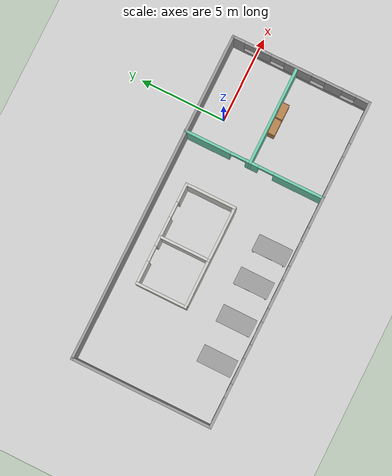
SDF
<sdf version="1.6">
 <world name="default">
  <plugin name="hello_world" filename="libhello_world.so"/>
  <light name="sun" type="directional">
   <pose>0 0 10 0 -0 0</pose>
   <diffuse>0.8 0.8 0.8 1</diffuse>
   <specular>0.2 0.2 0.2 1</specular>
   <attenuation>
    <range>1000</range>
    <constant>0.9</constant>
    <linear>0.01</linear>
    <quadratic>0.001</quadratic>
   </attenuation>
   <direction>-0.5 0.1 -0.9</direction>
  </light>
  <model name="ground_plane">
   <static>1</static>
   <link name="link">
    <collision name="collision">
     <geometry><plane><normal>0 0 1</normal><size>100 100</size></plane></geometry>
     <surface>
      <contact><collide_bitmask>65535</collide_bitmask></contact>
      <friction><ode><mu>100</mu><mu2>50</mu2></ode></friction>
     </surface>
    </collision>
    <visual name="visual">
     <cast_shadows>0</cast_shadows>
     <geometry><plane><normal>0 0 1</normal><size>100 100</size></plane></geometry>
     <material>
      <script><uri>file://media/materials/scripts/gazebo.material</uri><name>Gazebo/Grey</name></script>
     </material>
    </visual>
   </link>
  </model>
  <gravity>0 0 -9.8</gravity>
  <magnetic_field>6e-06 2.3e-05 -4.2e-05</magnetic_field>
  <atmosphere type="adiabatic"/>
  <physics name="default_physics" default="0" type="ode">
   <max_step_size>0.001</max_step_size>
   <real_time_factor>1</real_time_factor>
   <real_time_update_rate>1000</real_time_update_rate>
  </physics>
  <scene><ambient>0.4 0.4 0.4 1</ambient><background>0.7 0.7 0.7 1</background><shadows>1</shadows></scene>
  <spherical_coordinates>
   <surface_model>EARTH_WGS84</surface_model>
   <latitude_deg>0</latitude_deg>
   <longitude_deg>0</longitude_deg>
   <elevation>0</elevation>
   <heading_deg>0</heading_deg>
  </spherical_coordinates>
  <model name="Building">
   <pose>-5.59672 -2.64945 0 0 -0 0</pose>
   <link name="Wall_10">
    <pose>0 -4.06159 0 0 -0 3.14159</pose>
    <visual name="Wall_10_Visual_0">
     <pose>-8.37928 0 1.25 0 -0 0</pose>
     <geometry><box><size>2.49144 0.15 2.5</size></box></geometry>
     <material>
      <script><uri>file://media/materials/scripts/gazebo.material</uri><name>Gazebo/Grey</name></script>
      <ambient>1 1 1 1</ambient>
     </material>
     <meta><layer>0</layer></meta>
    </visual>
    <collision name="Wall_10_Collision_0">
     <geometry><box><size>2.49144 0.15 2.5</size></box></geometry>
     <pose>-8.37928 0 1.25 0 -0 0</pose>
    </collision>
    <visual name="Wall_10_Visual_1">
     <pose>1.24572 0 0.25 0 -0 0</pose>
     <geometry><box><size>16.7586 0.15 0.5</size></box></geometry>
     <material>
      <script><uri>file://media/materials/scripts/gazebo.material</uri><name>Gazebo/Grey</name></script>
      <ambient>1 1 1 1</ambient>
     </material>
     <meta><layer>0</layer></meta>
    </visual>
    <collision name="Wall_10_Collision_1">
     <geometry><box><size>16.7586 0.15 0.5</size></box></geometry>
     <pose>1.24572 0 0.25 0 -0 0</pose>
    </collision>
    <visual name="Wall_10_Visual_2">
     <pose>-4.235 0 1.5 0 -0 0</pose>
     <geometry><box><size>4.19712 0.15 2</size></box></geometry>
     <material>
      <script><uri>file://media/materials/scripts/gazebo.material</uri><name>Gazebo/Grey</name></script>
      <ambient>1 1 1 1</ambient>
     </material>
     <meta><layer>0</layer></meta>
    </visual>
    <collision name="Wall_10_Collision_2">
     <geometry><box><size>4.19712 0.15 2</size></box></geometry>
     <pose>-4.235 0 1.5 0 -0 0</pose>
    </collision>
    <visual name="Wall_10_Visual_3">
     <pose>-0.596746 0 1.5 0 -0 0</pose>
     <geometry><box><size>1.47939 0.15 2</size></box></geometry>
     <material>
      <script><uri>file://media/materials/scripts/gazebo.material</uri><name>Gazebo/Grey</name></script>
      <ambient>1 1 1 1</ambient>
     </material>
     <meta><layer>0</layer></meta>
    </visual>
    <collision name="Wall_10_Collision_3">
     <geometry><box><size>1.47939 0.15 2</size></box></geometry>
     <pose>-0.596746 0 1.5 0 -0 0</pose>
    </collision>
    <visual name="Wall_10_Visual_4">
     <pose>1.78785 0 1.5 0 -0 0</pose>
     <geometry><box><size>1.68979 0.15 2</size></box></geometry>
     <material>
      <script><uri>file://media/materials/scripts/gazebo.material</uri><name>Gazebo/Grey</name></script>
      <ambient>1 1 1 1</ambient>
     </material>
     <meta><layer>0</layer></meta>
    </visual>
    <collision name="Wall_10_Collision_4">
     <geometry><box><size>1.68979 0.15 2</size></box></geometry>
     <pose>1.78785 0 1.5 0 -0 0</pose>
    </collision>
    <visual name="Wall_10_Visual_5">
     <pose>4.08477 0 1.5 0 -0 0</pose>
     <geometry><box><size>1.30405 0.15 2</size></box></geometry>
     <material>
      <script><uri>file://media/materials/scripts/gazebo.material</uri><name>Gazebo/Grey</name></script>
      <ambient>1 1 1 1</ambient>
     </material>
     <meta><layer>0</layer></meta>
    </visual>
    <collision name="Wall_10_Collision_5">
     <geometry><box><size>1.30405 0.15 2</size></box></geometry>
     <pose>4.08477 0 1.5 0 -0 0</pose>
    </collision>
    <visual name="Wall_10_Visual_6">
     <pose>6.27649 0 1.5 0 -0 0</pose>
     <geometry><box><size>1.47939 0.15 2</size></box></geometry>
     <material>
      <script><uri>file://media/materials/scripts/gazebo.material</uri><name>Gazebo/Grey</name></script>
      <ambient>1 1 1 1</ambient>
     </material>
     <meta><layer>0</layer></meta>
    </visual>
    <collision name="Wall_10_Collision_6">
     <geometry><box><size>1.47939 0.15 2</size></box></geometry>
     <pose>6.27649 0 1.5 0 -0 0</pose>
    </collision>
    <visual name="Wall_10_Visual_7">
     <pose>8.72059 0 1.5 0 -0 0</pose>
     <geometry><box><size>1.80882 0.15 2</size></box></geometry>
     <material>
      <script><uri>file://media/materials/scripts/gazebo.material</uri><name>Gazebo/Grey</name></script>
      <ambient>1 1 1 1</ambient>
     </material>
     <meta><layer>0</layer></meta>
    </visual>
    <collision name="Wall_10_Collision_7">
     <geometry><box><size>1.80882 0.15 2</size></box></geometry>
     <pose>8.72059 0 1.5 0 -0 0</pose>
    </collision>
    <visual name="Wall_10_Visual_8">
     <pose>-6.73356 0 1.9 0 -0 0</pose>
     <geometry><box><size>0.8 0.15 1.2</size></box></geometry>
     <material>
      <script><uri>file://media/materials/scripts/gazebo.material</uri><name>Gazebo/Grey</name></script>
      <ambient>1 1 1 1</ambient>
     </material>
     <meta><layer>0</layer></meta>
    </visual>
    <collision name="Wall_10_Collision_8">
     <geometry><box><size>0.8 0.15 1.2</size></box></geometry>
     <pose>-6.73356 0 1.9 0 -0 0</pose>
    </collision>
    <visual name="Wall_10_Visual_9">
     <pose>-1.73644 0 1.9 0 -0 0</pose>
     <geometry><box><size>0.8 0.15 1.2</size></box></geometry>
     <material>
      <script><uri>file://media/materials/scripts/gazebo.material</uri><name>Gazebo/Grey</name></script>
      <ambient>1 1 1 1</ambient>
     </material>
     <meta><layer>0</layer></meta>
    </visual>
    <collision name="Wall_10_Collision_9">
     <geometry><box><size>0.8 0.15 1.2</size></box></geometry>
     <pose>-1.73644 0 1.9 0 -0 0</pose>
    </collision>
    <visual name="Wall_10_Visual_10">
     <pose>0.542949 0 1.9 0 -0 0</pose>
     <geometry><box><size>0.8 0.15 1.2</size></box></geometry>
     <material>
      <script><uri>file://media/materials/scripts/gazebo.material</uri><name>Gazebo/Grey</name></script>
      <ambient>1 1 1 1</ambient>
     </material>
     <meta><layer>0</layer></meta>
    </visual>
    <collision name="Wall_10_Collision_10">
     <geometry><box><size>0.8 0.15 1.2</size></box></geometry>
     <pose>0.542949 0 1.9 0 -0 0</pose>
    </collision>
    <visual name="Wall_10_Visual_11">
     <pose>3.03274 0 1.9 0 -0 0</pose>
     <geometry><box><size>0.8 0.15 1.2</size></box></geometry>
     <material>
      <script><uri>file://media/materials/scripts/gazebo.material</uri><name>Gazebo/Grey</name></script>
      <ambient>1 1 1 1</ambient>
     </material>
     <meta><layer>0</layer></meta>
    </visual>
    <collision name="Wall_10_Collision_11">
     <geometry><box><size>0.8 0.15 1.2</size></box></geometry>
     <pose>3.03274 0 1.9 0 -0 0</pose>
    </collision>
    <visual name="Wall_10_Visual_12">
     <pose>5.1368 0 1.9 0 -0 0</pose>
     <geometry><box><size>0.8 0.15 1.2</size></box></geometry>
     <material>
      <script><uri>file://media/materials/scripts/gazebo.material</uri><name>Gazebo/Grey</name></script>
      <ambient>1 1 1 1</ambient>
     </material>
     <meta><layer>0</layer></meta>
    </visual>
    <collision name="Wall_10_Collision_12">
     <geometry><box><size>0.8 0.15 1.2</size></box></geometry>
     <pose>5.1368 0 1.9 0 -0 0</pose>
    </collision>
    <visual name="Wall_10_Visual_13">
     <pose>7.41618 0 1.9 0 -0 0</pose>
     <geometry><box><size>0.8 0.15 1.2</size></box></geometry>
     <material>
      <script><uri>file://media/materials/scripts/gazebo.material</uri><name>Gazebo/Grey</name></script>
      <ambient>1 1 1 1</ambient>
     </material>
     <meta><layer>0</layer></meta>
    </visual>
    <collision name="Wall_10_Collision_13">
     <geometry><box><size>0.8 0.15 1.2</size></box></geometry>
     <pose>7.41618 0 1.9 0 -0 0</pose>
    </collision>
   </link>
   <link name="Wall_11">
    <collision name="Wall_11_Collision">
     <geometry><box><size>8.25 0.15 2.5</size></box></geometry>
     <pose>0 0 1.25 0 -0 0</pose>
    </collision>
    <visual name="Wall_11_Visual">
     <pose>0 0 1.25 0 -0 0</pose>
     <geometry><box><size>8.25 0.15 2.5</size></box></geometry>
     <material>
      <script><uri>file://media/materials/scripts/gazebo.material</uri><name>Gazebo/Grey</name></script>
      <ambient>1 1 1 1</ambient>
     </material>
     <meta><layer>0</layer></meta>
    </visual>
    <pose>-9.55 -0.011594 0 0 -0 1.5708</pose>
   </link>
   <link name="Wall_13">
    <pose>3.88768 0.011594 0 0 0 -1.5708</pose>
    <visual name="Wall_13_Visual_0">
     <pose>-2.75451 0 1.25 0 -0 0</pose>
     <geometry><box><size>2.74098 0.15 2.5</size></box></geometry>
     <material>
      <script><uri>file://media/materials/scripts/gazebo.material</uri><name>Gazebo/Grey</name></script>
      <ambient>0.435294 0.796078 0.67451 1</ambient>
     </material>
     <meta><layer>0</layer></meta>
    </visual>
    <collision name="Wall_13_Collision_0">
     <geometry><box><size>2.74098 0.15 2.5</size></box></geometry>
     <pose>-2.75451 0 1.25 0 -0 0</pose>
    </collision>
    <visual name="Wall_13_Visual_1">
     <pose>-0.109467 0 1.25 0 -0 0</pose>
     <geometry><box><size>0.749111 0.15 2.5</size></box></geometry>
     <material>
      <script><uri>file://media/materials/scripts/gazebo.material</uri><name>Gazebo/Grey</name></script>
      <ambient>0.435294 0.796078 0.67451 1</ambient>
     </material>
     <meta><layer>0</layer></meta>
    </visual>
    <collision name="Wall_13_Collision_1">
     <geometry><box><size>0.749111 0.15 2.5</size></box></geometry>
     <pose>-0.109467 0 1.25 0 -0 0</pose>
    </collision>
    <visual name="Wall_13_Visual_2">
     <pose>2.64504 0 1.25 0 -0 0</pose>
     <geometry><box><size>2.95991 0.15 2.5</size></box></geometry>
     <material>
      <script><uri>file://media/materials/scripts/gazebo.material</uri><name>Gazebo/Grey</name></script>
      <ambient>0.435294 0.796078 0.67451 1</ambient>
     </material>
     <meta><layer>0</layer></meta>
    </visual>
    <collision name="Wall_13_Collision_2">
     <geometry><box><size>2.95991 0.15 2.5</size></box></geometry>
     <pose>2.64504 0 1.25 0 -0 0</pose>
    </collision>
    <visual name="Wall_13_Visual_3">
     <pose>-0.934023 0 2.25 0 -0 0</pose>
     <geometry><box><size>0.9 0.15 0.5</size></box></geometry>
     <material>
      <script><uri>file://media/materials/scripts/gazebo.material</uri><name>Gazebo/Grey</name></script>
      <ambient>0.435294 0.796078 0.67451 1</ambient>
     </material>
     <meta><layer>0</layer></meta>
    </visual>
    <collision name="Wall_13_Collision_3">
     <geometry><box><size>0.9 0.15 0.5</size></box></geometry>
     <pose>-0.934023 0 2.25 0 -0 0</pose>
    </collision>
    <visual name="Wall_13_Visual_4">
     <pose>0.715088 0 2.25 0 -0 0</pose>
     <geometry><box><size>0.9 0.15 0.5</size></box></geometry>
     <material>
      <script><uri>file://media/materials/scripts/gazebo.material</uri><name>Gazebo/Grey</name></script>
      <ambient>0.435294 0.796078 0.67451 1</ambient>
     </material>
     <meta><layer>0</layer></meta>
    </visual>
    <collision name="Wall_13_Collision_4">
     <geometry><box><size>0.9 0.15 0.5</size></box></geometry>
     <pose>0.715088 0 2.25 0 -0 0</pose>
    </collision>
   </link>
   <link name="Wall_15">
    <collision name="Wall_15_Collision">
     <geometry><box><size>5.75 0.15 2.5</size></box></geometry>
     <pose>0 0 1.25 0 -0 0</pose>
    </collision>
    <visual name="Wall_15_Visual">
     <pose>0 0 1.25 0 -0 0</pose>
     <geometry><box><size>5.75 0.15 2.5</size></box></geometry>
     <material>
      <script><uri>file://media/materials/scripts/gazebo.material</uri><name>Gazebo/Grey</name></script>
      <ambient>0.435294 0.796078 0.67451 1</ambient>
     </material>
     <meta><layer>0</layer></meta>
    </visual>
    <pose>6.68768 0.235507 0 0 -0 0</pose>
   </link>
   <link name="Wall_17">
    <pose>-1.56993 2.75145 0 0 -0 0</pose>
    <visual name="Wall_17_Visual_0">
     <pose>-2.31545 0 1.25 0 -0 0</pose>
     <geometry><box><size>1.36911 0.15 2.5</size></box></geometry>
     <material>
      <script><uri>file://media/materials/scripts/gazebo.material</uri><name>Gazebo/CeilingTiled</name></script>
      <ambient>1 1 1 1</ambient>
     </material>
     <meta><layer>0</layer></meta>
    </visual>
    <collision name="Wall_17_Collision_0">
     <geometry><box><size>1.36911 0.15 2.5</size></box></geometry>
     <pose>-2.31545 0 1.25 0 -0 0</pose>
    </collision>
    <visual name="Wall_17_Visual_1">
     <pose>0.119847 0 1.25 0 -0 0</pose>
     <geometry><box><size>1.70148 0.15 2.5</size></box></geometry>
     <material>
      <script><uri>file://media/materials/scripts/gazebo.material</uri><name>Gazebo/CeilingTiled</name></script>
      <ambient>1 1 1 1</ambient>
     </material>
     <meta><layer>0</layer></meta>
    </visual>
    <collision name="Wall_17_Collision_1">
     <geometry><box><size>1.70148 0.15 2.5</size></box></geometry>
     <pose>0.119847 0 1.25 0 -0 0</pose>
    </collision>
    <visual name="Wall_17_Visual_2">
     <pose>2.43529 0 1.25 0 -0 0</pose>
     <geometry><box><size>1.12941 0.15 2.5</size></box></geometry>
     <material>
      <script><uri>file://media/materials/scripts/gazebo.material</uri><name>Gazebo/CeilingTiled</name></script>
      <ambient>1 1 1 1</ambient>
     </material>
     <meta><layer>0</layer></meta>
    </visual>
    <collision name="Wall_17_Collision_2">
     <geometry><box><size>1.12941 0.15 2.5</size></box></geometry>
     <pose>2.43529 0 1.25 0 -0 0</pose>
    </collision>
    <visual name="Wall_17_Visual_3">
     <pose>-1.1809 0 2.25 0 -0 0</pose>
     <geometry><box><size>0.9 0.15 0.5</size></box></geometry>
     <material>
      <script><uri>file://media/materials/scripts/gazebo.material</uri><name>Gazebo/CeilingTiled</name></script>
      <ambient>1 1 1 1</ambient>
     </material>
     <meta><layer>0</layer></meta>
    </visual>
    <collision name="Wall_17_Collision_3">
     <geometry><box><size>0.9 0.15 0.5</size></box></geometry>
     <pose>-1.1809 0 2.25 0 -0 0</pose>
    </collision>
    <visual name="Wall_17_Visual_4">
     <pose>1.42059 0 2.25 0 -0 0</pose>
     <geometry><box><size>0.9 0.15 0.5</size></box></geometry>
     <material>
      <script><uri>file://media/materials/scripts/gazebo.material</uri><name>Gazebo/CeilingTiled</name></script>
      <ambient>1 1 1 1</ambient>
     </material>
     <meta><layer>0</layer></meta>
    </visual>
    <collision name="Wall_17_Collision_4">
     <geometry><box><size>0.9 0.15 0.5</size></box></geometry>
     <pose>1.42059 0 2.25 0 -0 0</pose>
    </collision>
   </link>
   <link name="Wall_18">
    <collision name="Wall_18_Collision">
     <geometry><box><size>3 0.15 2.5</size></box></geometry>
     <pose>0 0 1.25 0 -0 0</pose>
    </collision>
    <visual name="Wall_18_Visual">
     <pose>0 0 1.25 0 -0 0</pose>
     <geometry><box><size>3 0.15 2.5</size></box></geometry>
     <material>
      <script><uri>file://media/materials/scripts/gazebo.material</uri><name>Gazebo/CeilingTiled</name></script>
      <ambient>1 1 1 1</ambient>
     </material>
     <meta><layer>0</layer></meta>
    </visual>
    <pose>1.35507 1.32645 0 0 0 -1.5708</pose>
   </link>
   <link name="Wall_19">
    <collision name="Wall_19_Collision">
     <geometry><box><size>6 0.15 2.5</size></box></geometry>
     <pose>0 0 1.25 0 -0 0</pose>
    </collision>
    <visual name="Wall_19_Visual">
     <pose>0 0 1.25 0 -0 0</pose>
     <geometry><box><size>6 0.15 2.5</size></box></geometry>
     <material>
      <script><uri>file://media/materials/scripts/gazebo.material</uri><name>Gazebo/CeilingTiled</name></script>
      <ambient>1 1 1 1</ambient>
     </material>
     <meta><layer>0</layer></meta>
    </visual>
    <pose>-1.56993 -0.098551 0 0 -0 3.14159</pose>
   </link>
   <link name="Wall_20">
    <collision name="Wall_20_Collision">
     <geometry><box><size>3 0.15 2.5</size></box></geometry>
     <pose>0 0 1.25 0 -0 0</pose>
    </collision>
    <visual name="Wall_20_Visual">
     <pose>0 0 1.25 0 -0 0</pose>
     <geometry><box><size>3 0.15 2.5</size></box></geometry>
     <material>
      <script><uri>file://media/materials/scripts/gazebo.material</uri><name>Gazebo/CeilingTiled</name></script>
      <ambient>1 1 1 1</ambient>
     </material>
     <meta><layer>0</layer></meta>
    </visual>
    <pose>-4.49493 1.32645 0 0 -0 1.5708</pose>
   </link>
   <link name="Wall_23">
    <collision name="Wall_23_Collision">
     <geometry><box><size>3 0.15 2.5</size></box></geometry>
     <pose>0 0 1.25 0 -0 0</pose>
    </collision>
    <visual name="Wall_23_Visual">
     <pose>0 0 1.25 0 -0 0</pose>
     <geometry><box><size>3 0.15 2.5</size></box></geometry>
     <material>
      <script><uri>file://media/materials/scripts/gazebo.material</uri><name>Gazebo/CeilingTiled</name></script>
      <ambient>1 1 1 1</ambient>
     </material>
     <meta><layer>0</layer></meta>
    </visual>
    <pose>-1.75334 1.33013 0 0 0 -1.5708</pose>
   </link>
   <link name="Wall_8">
    <collision name="Wall_8_Collision">
     <geometry><box><size>19.25 0.15 2.5</size></box></geometry>
     <pose>0 0 1.25 0 -0 0</pose>
    </collision>
    <visual name="Wall_8_Visual">
     <pose>0 0 1.25 0 -0 0</pose>
     <geometry><box><size>19.25 0.15 2.5</size></box></geometry>
     <material>
      <script><uri>file://media/materials/scripts/gazebo.material</uri><name>Gazebo/Grey</name></script>
      <ambient>1 1 1 1</ambient>
     </material>
     <meta><layer>0</layer></meta>
    </visual>
    <pose>0 4.03841 0 0 -0 0</pose>
   </link>
   <link name="Wall_9">
    <pose>9.55 -0.011594 0 0 0 -1.5708</pose>
    <visual name="Wall_9_Visual_0">
     <pose>-3.73293 0 1.25 0 -0 0</pose>
     <geometry><box><size>0.784146 0.15 2.5</size></box></geometry>
     <material>
      <script><uri>file://media/materials/scripts/gazebo.material</uri><name>Gazebo/Grey</name></script>
      <ambient>1 1 1 1</ambient>
     </material>
     <meta><layer>0</layer></meta>
    </visual>
    <collision name="Wall_9_Collision_0">
     <geometry><box><size>0.784146 0.15 2.5</size></box></geometry>
     <pose>-3.73293 0 1.25 0 -0 0</pose>
    </collision>
    <visual name="Wall_9_Visual_1">
     <pose>0.392073 0 0.25 0 -0 0</pose>
     <geometry><box><size>7.46585 0.15 0.5</size></box></geometry>
     <material>
      <script><uri>file://media/materials/scripts/gazebo.material</uri><name>Gazebo/Grey</name></script>
      <ambient>1 1 1 1</ambient>
     </material>
     <meta><layer>0</layer></meta>
    </visual>
    <collision name="Wall_9_Collision_1">
     <geometry><box><size>7.46585 0.15 0.5</size></box></geometry>
     <pose>0.392073 0 0.25 0 -0 0</pose>
    </collision>
    <visual name="Wall_9_Visual_2">
     <pose>-2.15184 0 1.5 0 -0 0</pose>
     <geometry><box><size>0.778039 0.15 2</size></box></geometry>
     <material>
      <script><uri>file://media/materials/scripts/gazebo.material</uri><name>Gazebo/Grey</name></script>
      <ambient>1 1 1 1</ambient>
     </material>
     <meta><layer>0</layer></meta>
    </visual>
    <collision name="Wall_9_Collision_2">
     <geometry><box><size>0.778039 0.15 2</size></box></geometry>
     <pose>-2.15184 0 1.5 0 -0 0</pose>
    </collision>
    <visual name="Wall_9_Visual_3">
     <pose>-0.161753 0 1.5 0 -0 0</pose>
     <geometry><box><size>1.60213 0.15 2</size></box></geometry>
     <material>
      <script><uri>file://media/materials/scripts/gazebo.material</uri><name>Gazebo/Grey</name></script>
      <ambient>1 1 1 1</ambient>
     </material>
     <meta><layer>0</layer></meta>
    </visual>
    <collision name="Wall_9_Collision_3">
     <geometry><box><size>1.60213 0.15 2</size></box></geometry>
     <pose>-0.161753 0 1.5 0 -0 0</pose>
    </collision>
    <visual name="Wall_9_Visual_4">
     <pose>1.9423 0 1.5 0 -0 0</pose>
     <geometry><box><size>1.00598 0.15 2</size></box></geometry>
     <material>
      <script><uri>file://media/materials/scripts/gazebo.material</uri><name>Gazebo/Grey</name></script>
      <ambient>1 1 1 1</ambient>
     </material>
     <meta><layer>0</layer></meta>
    </visual>
    <collision name="Wall_9_Collision_4">
     <geometry><box><size>1.00598 0.15 2</size></box></geometry>
     <pose>1.9423 0 1.5 0 -0 0</pose>
    </collision>
    <visual name="Wall_9_Visual_5">
     <pose>3.68514 0 1.5 0 -0 0</pose>
     <geometry><box><size>0.879712 0.15 2</size></box></geometry>
     <material>
      <script><uri>file://media/materials/scripts/gazebo.material</uri><name>Gazebo/Grey</name></script>
      <ambient>1 1 1 1</ambient>
     </material>
     <meta><layer>0</layer></meta>
    </visual>
    <collision name="Wall_9_Collision_5">
     <geometry><box><size>0.879712 0.15 2</size></box></geometry>
     <pose>3.68514 0 1.5 0 -0 0</pose>
    </collision>
    <visual name="Wall_9_Visual_6">
     <pose>-2.94085 0 1.9 0 -0 0</pose>
     <geometry><box><size>0.8 0.15 1.2</size></box></geometry>
     <material>
      <script><uri>file://media/materials/scripts/gazebo.material</uri><name>Gazebo/Grey</name></script>
      <ambient>1 1 1 1</ambient>
     </material>
     <meta><layer>0</layer></meta>
    </visual>
    <collision name="Wall_9_Collision_6">
     <geometry><box><size>0.8 0.15 1.2</size></box></geometry>
     <pose>-2.94085 0 1.9 0 -0 0</pose>
    </collision>
    <visual name="Wall_9_Visual_7">
     <pose>-1.36282 0 1.9 0 -0 0</pose>
     <geometry><box><size>0.8 0.15 1.2</size></box></geometry>
     <material>
      <script><uri>file://media/materials/scripts/gazebo.material</uri><name>Gazebo/Grey</name></script>
      <ambient>1 1 1 1</ambient>
     </material>
     <meta><layer>0</layer></meta>
    </visual>
    <collision name="Wall_9_Collision_7">
     <geometry><box><size>0.8 0.15 1.2</size></box></geometry>
     <pose>-1.36282 0 1.9 0 -0 0</pose>
    </collision>
    <visual name="Wall_9_Visual_8">
     <pose>1.03931 0 1.9 0 -0 0</pose>
     <geometry><box><size>0.8 0.15 1.2</size></box></geometry>
     <material>
      <script><uri>file://media/materials/scripts/gazebo.material</uri><name>Gazebo/Grey</name></script>
      <ambient>1 1 1 1</ambient>
     </material>
     <meta><layer>0</layer></meta>
    </visual>
    <collision name="Wall_9_Collision_8">
     <geometry><box><size>0.8 0.15 1.2</size></box></geometry>
     <pose>1.03931 0 1.9 0 -0 0</pose>
    </collision>
    <visual name="Wall_9_Visual_9">
     <pose>2.84529 0 1.9 0 -0 0</pose>
     <geometry><box><size>0.8 0.15 1.2</size></box></geometry>
     <material>
      <script><uri>file://media/materials/scripts/gazebo.material</uri><name>Gazebo/Grey</name></script>
      <ambient>1 1 1 1</ambient>
     </material>
     <meta><layer>0</layer></meta>
    </visual>
    <collision name="Wall_9_Collision_9">
     <geometry><box><size>0.8 0.15 1.2</size></box></geometry>
     <pose>2.84529 0 1.9 0 -0 0</pose>
    </collision>
   </link>
   <static>1</static>
  </model>
  <model name="Desk">
   <link name="link_0">
    <pose>-5.87459 -9.93361 0.359623 0 -0 0</pose>
    <inertial>
     <mass>1</mass>
     <inertia>
      <ixx>0.166667</ixx>
      <ixy>0</ixy>
      <ixz>0</ixz>
      <iyy>0.166667</iyy>
      <iyz>0</iyz>
      <izz>0.166667</izz>
     </inertia>
    </inertial>
    <visual name="ModelPreview_0::link_0::visual_3">
     <pose>0 0 -0.1 0 -0 0</pose>
     <geometry><box><size>0.1 0.1 0.75</size></box></geometry>
     <material>
      <lighting>1</lighting>
      <script><uri>file://media/materials/scripts/gazebo.material</uri><name>Gazebo/Grey</name></script>
      <shader type="pixel"><normal_map>__default__</normal_map></shader>
      <ambient>0.3 0.3 0.3 1</ambient>
      <diffuse>0.7 0.7 0.7 1</diffuse>
      <specular>0.01 0.01 0.01 1</specular>
      <emissive>0 0 0 1</emissive>
     </material>
    </visual>
    <visual name="visual">
     <pose>0 0 -0.5 0 -0 0</pose>
     <geometry><box><size>0.8 0.1 0.05</size></box></geometry>
     <material>
      <lighting>1</lighting>
      <script><uri>file://media/materials/scripts/gazebo.material</uri><name>Gazebo/Grey</name></script>
      <shader type="pixel"><normal_map>__default__</normal_map></shader>
      <ambient>0.3 0.3 0.3 1</ambient>
      <diffuse>0.7 0.7 0.7 1</diffuse>
      <specular>0.01 0.01 0.01 1</specular>
      <emissive>0 0 0 1</emissive>
     </material>
    </visual>
    <visual name="ModelPreview_0::link_0::visual_2">
     <pose>0 1.8 -0.1 0 -0 0</pose>
     <geometry><box><size>0.1 0.1 0.75</size></box></geometry>
     <material>
      <lighting>1</lighting>
      <script><uri>file://media/materials/scripts/gazebo.material</uri><name>Gazebo/Grey</name></script>
      <shader type="pixel"><normal_map>__default__</normal_map></shader>
      <ambient>0.3 0.3 0.3 1</ambient>
      <diffuse>0.7 0.7 0.7 1</diffuse>
      <specular>0.01 0.01 0.01 1</specular>
      <emissive>0 0 0 1</emissive>
     </material>
    </visual>
    <visual name="ModelPreview_0::link_0::visual_1">
     <pose>0 1.8 -0.5 0 -0 0</pose>
     <geometry><box><size>0.8 0.1 0.05</size></box></geometry>
     <material>
      <lighting>1</lighting>
      <script><uri>file://media/materials/scripts/gazebo.material</uri><name>Gazebo/Grey</name></script>
      <shader type="pixel"><normal_map>__default__</normal_map></shader>
      <ambient>0.3 0.3 0.3 1</ambient>
      <diffuse>0.7 0.7 0.7 1</diffuse>
      <specular>0.01 0.01 0.01 1</specular>
      <emissive>0 0 0 1</emissive>
     </material>
    </visual>
    <collision name="collision">
     <pose>0 0.9 -0.1 0 -0 0</pose>
     <geometry><box><size>0.8 2 0.8</size></box></geometry>
     <surface>
      <friction>
       <ode><mu>1</mu><mu2>1</mu2><fdir1>0 0 0</fdir1><slip1>0</slip1><slip2>0</slip2></ode>
       <torsional>
        <coefficient>1</coefficient>
        <patch_radius>0</patch_radius>
        <surface_radius>0</surface_radius>
        <use_patch_radius>1</use_patch_radius>
        <ode><slip>0</slip></ode>
       </torsional>
      </friction>
      <bounce><restitution_coefficient>0</restitution_coefficient><threshold>1e+06</threshold></bounce>
      <contact>
       <collide_without_contact>0</collide_without_contact>
       <collide_without_contact_bitmask>1</collide_without_contact_bitmask>
       <collide_bitmask>1</collide_bitmask>
       <ode>
        <soft_cfm>0</soft_cfm>
        <soft_erp>0.2</soft_erp>
        <kp>1e+13</kp>
        <kd>1</kd>
        <max_vel>0.01</max_vel>
        <min_depth>0</min_depth>
       </ode>
       <bullet>
        <split_impulse>1</split_impulse>
        <split_impulse_penetration_threshold>-0.01</split_impulse_penetration_threshold>
        <soft_cfm>0</soft_cfm>
        <soft_erp>0.2</soft_erp>
        <kp>1e+13</kp>
        <kd>1</kd>
       </bullet>
      </contact>
     </surface>
    </collision>
   </link>
   <link name="link_1">
    <pose>-5.78051 -9.03331 0.640377 0 -0 0</pose>
    <inertial>
     <mass>1</mass>
     <inertia>
      <ixx>0.166667</ixx>
      <ixy>0</ixy>
      <ixz>0</ixz>
      <iyy>0.166667</iyy>
      <iyz>0</iyz>
      <izz>0.166667</izz>
     </inertia>
    </inertial>
    <visual name="visual">
     <geometry><box><size>1 2 0.02</size></box></geometry>
     <material>
      <lighting>1</lighting>
      <script><uri>file://media/materials/scripts/gazebo.material</uri><name>Gazebo/Grey</name></script>
      <shader type="pixel"><normal_map>__default__</normal_map></shader>
      <ambient>0.3 0.3 0.3 1</ambient>
      <diffuse>0.7 0.7 0.7 1</diffuse>
      <specular>0.01 0.01 0.01 1</specular>
      <emissive>0 0 0 1</emissive>
     </material>
    </visual>
    <collision name="collision">
     <geometry><box><size>1 2 0.02</size></box></geometry>
     <surface>
      <friction>
       <ode><mu>1</mu><mu2>1</mu2><fdir1>0 0 0</fdir1><slip1>0</slip1><slip2>0</slip2></ode>
       <torsional>
        <coefficient>1</coefficient>
        <patch_radius>0</patch_radius>
        <surface_radius>0</surface_radius>
        <use_patch_radius>1</use_patch_radius>
        <ode><slip>0</slip></ode>
       </torsional>
      </friction>
      <bounce><restitution_coefficient>0</restitution_coefficient><threshold>1e+06</threshold></bounce>
      <contact>
       <collide_without_contact>0</collide_without_contact>
       <collide_without_contact_bitmask>1</collide_without_contact_bitmask>
       <collide_bitmask>1</collide_bitmask>
       <ode>
        <soft_cfm>0</soft_cfm>
        <soft_erp>0.2</soft_erp>
        <kp>1e+13</kp>
        <kd>1</kd>
        <max_vel>0.01</max_vel>
        <min_depth>0</min_depth>
       </ode>
       <bullet>
        <split_impulse>1</split_impulse>
        <split_impulse_penetration_threshold>-0.01</split_impulse_penetration_threshold>
        <soft_cfm>0</soft_cfm>
        <soft_erp>0.2</soft_erp>
        <kp>1e+13</kp>
        <kd>1</kd>
       </bullet>
      </contact>
     </surface>
    </collision>
   </link>
   <joint name="link_0_JOINT_1" type="revolute">
    <parent>link_0</parent>
    <child>link_1</child>
    <axis>
     <xyz>1 0 0</xyz>
     <use_parent_model_frame>0</use_parent_model_frame>
     <limit>
      <lower>-1.79769e+308</lower>
      <upper>1.79769e+308</upper>
      <effort>-1</effort>
      <velocity>-1</velocity>
     </limit>
     <dynamics>
      <spring_reference>0</spring_reference>
      <spring_stiffness>0</spring_stiffness>
      <damping>0</damping>
     </dynamics>
    </axis>
    <physics>
     <ode><limit><cfm>0</cfm><erp>0.2</erp></limit><suspension><cfm>0</cfm><erp>0.2</erp></suspension></ode>
    </physics>
   </joint>
   <static>0</static>
   <pose>0.542016 3.50617 0.140348 -3e-06 -0 -0.001994</pose>
  </model>
  <model name="Desk_clone_1">
   <link name="link_0">
    <pose>-5.87459 -9.93361 0.359623 0 -0 0</pose>
    <inertial>
     <mass>1</mass>
     <inertia>
      <ixx>0.166667</ixx>
      <ixy>0</ixy>
      <ixz>0</ixz>
      <iyy>0.166667</iyy>
      <iyz>0</iyz>
      <izz>0.166667</izz>
     </inertia>
    </inertial>
    <visual name="ModelPreview_0::link_0::visual_3">
     <pose>0 0 -0.1 0 -0 0</pose>
     <geometry><box><size>0.1 0.1 0.75</size></box></geometry>
     <material>
      <lighting>1</lighting>
      <script><uri>file://media/materials/scripts/gazebo.material</uri><name>Gazebo/Grey</name></script>
      <shader type="pixel"><normal_map>__default__</normal_map></shader>
      <ambient>0.3 0.3 0.3 1</ambient>
      <diffuse>0.7 0.7 0.7 1</diffuse>
      <specular>0.01 0.01 0.01 1</specular>
      <emissive>0 0 0 1</emissive>
     </material>
    </visual>
    <visual name="visual">
     <pose>0 0 -0.5 0 -0 0</pose>
     <geometry><box><size>0.8 0.1 0.05</size></box></geometry>
     <material>
      <lighting>1</lighting>
      <script><uri>file://media/materials/scripts/gazebo.material</uri><name>Gazebo/Grey</name></script>
      <shader type="pixel"><normal_map>__default__</normal_map></shader>
      <ambient>0.3 0.3 0.3 1</ambient>
      <diffuse>0.7 0.7 0.7 1</diffuse>
      <specular>0.01 0.01 0.01 1</specular>
      <emissive>0 0 0 1</emissive>
     </material>
    </visual>
    <visual name="ModelPreview_0::link_0::visual_2">
     <pose>0 1.8 -0.1 0 -0 0</pose>
     <geometry><box><size>0.1 0.1 0.75</size></box></geometry>
     <material>
      <lighting>1</lighting>
      <script><uri>file://media/materials/scripts/gazebo.material</uri><name>Gazebo/Grey</name></script>
      <shader type="pixel"><normal_map>__default__</normal_map></shader>
      <ambient>0.3 0.3 0.3 1</ambient>
      <diffuse>0.7 0.7 0.7 1</diffuse>
      <specular>0.01 0.01 0.01 1</specular>
      <emissive>0 0 0 1</emissive>
     </material>
    </visual>
    <visual name="ModelPreview_0::link_0::visual_1">
     <pose>0 1.8 -0.5 0 -0 0</pose>
     <geometry><box><size>0.8 0.1 0.05</size></box></geometry>
     <material>
      <lighting>1</lighting>
      <script><uri>file://media/materials/scripts/gazebo.material</uri><name>Gazebo/Grey</name></script>
      <shader type="pixel"><normal_map>__default__</normal_map></shader>
      <ambient>0.3 0.3 0.3 1</ambient>
      <diffuse>0.7 0.7 0.7 1</diffuse>
      <specular>0.01 0.01 0.01 1</specular>
      <emissive>0 0 0 1</emissive>
     </material>
    </visual>
    <collision name="collision">
     <pose>0 0.9 -0.1 0 -0 0</pose>
     <geometry><box><size>0.8 2 0.8</size></box></geometry>
     <surface>
      <friction>
       <ode><mu>1</mu><mu2>1</mu2><fdir1>0 0 0</fdir1><slip1>0</slip1><slip2>0</slip2></ode>
       <torsional>
        <coefficient>1</coefficient>
        <patch_radius>0</patch_radius>
        <surface_radius>0</surface_radius>
        <use_patch_radius>1</use_patch_radius>
        <ode><slip>0</slip></ode>
       </torsional>
      </friction>
      <bounce><restitution_coefficient>0</restitution_coefficient><threshold>1e+06</threshold></bounce>
      <contact>
       <collide_without_contact>0</collide_without_contact>
       <collide_without_contact_bitmask>1</collide_without_contact_bitmask>
       <collide_bitmask>1</collide_bitmask>
       <ode>
        <soft_cfm>0</soft_cfm>
        <soft_erp>0.2</soft_erp>
        <kp>1e+13</kp>
        <kd>1</kd>
        <max_vel>0.01</max_vel>
        <min_depth>0</min_depth>
       </ode>
       <bullet>
        <split_impulse>1</split_impulse>
        <split_impulse_penetration_threshold>-0.01</split_impulse_penetration_threshold>
        <soft_cfm>0</soft_cfm>
        <soft_erp>0.2</soft_erp>
        <kp>1e+13</kp>
        <kd>1</kd>
       </bullet>
      </contact>
     </surface>
    </collision>
   </link>
   <link name="link_1">
    <pose>-5.78051 -9.03331 0.640377 0 -0 0</pose>
    <inertial>
     <mass>1</mass>
     <inertia>
      <ixx>0.166667</ixx>
      <ixy>0</ixy>
      <ixz>0</ixz>
      <iyy>0.166667</iyy>
      <iyz>0</iyz>
      <izz>0.166667</izz>
     </inertia>
    </inertial>
    <visual name="visual">
     <geometry><box><size>1 2 0.02</size></box></geometry>
     <material>
      <lighting>1</lighting>
      <script><uri>file://media/materials/scripts/gazebo.material</uri><name>Gazebo/Grey</name></script>
      <shader type="pixel"><normal_map>__default__</normal_map></shader>
      <ambient>0.3 0.3 0.3 1</ambient>
      <diffuse>0.7 0.7 0.7 1</diffuse>
      <specular>0.01 0.01 0.01 1</specular>
      <emissive>0 0 0 1</emissive>
     </material>
    </visual>
    <collision name="collision">
     <geometry><box><size>1 2 0.02</size></box></geometry>
     <surface>
      <friction>
       <ode><mu>1</mu><mu2>1</mu2><fdir1>0 0 0</fdir1><slip1>0</slip1><slip2>0</slip2></ode>
       <torsional>
        <coefficient>1</coefficient>
        <patch_radius>0</patch_radius>
        <surface_radius>0</surface_radius>
        <use_patch_radius>1</use_patch_radius>
        <ode><slip>0</slip></ode>
       </torsional>
      </friction>
      <bounce><restitution_coefficient>0</restitution_coefficient><threshold>1e+06</threshold></bounce>
      <contact>
       <collide_without_contact>0</collide_without_contact>
       <collide_without_contact_bitmask>1</collide_without_contact_bitmask>
       <collide_bitmask>1</collide_bitmask>
       <ode>
        <soft_cfm>0</soft_cfm>
        <soft_erp>0.2</soft_erp>
        <kp>1e+13</kp>
        <kd>1</kd>
        <max_vel>0.01</max_vel>
        <min_depth>0</min_depth>
       </ode>
       <bullet>
        <split_impulse>1</split_impulse>
        <split_impulse_penetration_threshold>-0.01</split_impulse_penetration_threshold>
        <soft_cfm>0</soft_cfm>
        <soft_erp>0.2</soft_erp>
        <kp>1e+13</kp>
        <kd>1</kd>
       </bullet>
      </contact>
     </surface>
    </collision>
   </link>
   <joint name="link_0_JOINT_1" type="revolute">
    <parent>link_0</parent>
    <child>link_1</child>
    <axis>
     <xyz>1 0 0</xyz>
     <use_parent_model_frame>0</use_parent_model_frame>
     <limit>
      <lower>-1.79769e+308</lower>
      <upper>1.79769e+308</upper>
      <effort>-1</effort>
      <velocity>-1</velocity>
     </limit>
     <dynamics>
      <spring_reference>0</spring_reference>
      <spring_stiffness>0</spring_stiffness>
      <damping>0</damping>
     </dynamics>
    </axis>
    <physics>
     <ode><limit><cfm>0</cfm><erp>0.2</erp></limit><suspension><cfm>0</cfm><erp>0.2</erp></suspension></ode>
    </physics>
   </joint>
   <static>0</static>
   <pose>-6.07299 3.52848 0.140368 2e-06 4e-06 -0.001998</pose>
  </model>
  <model name="Desk_clone_1_clone">
   <link name="link_0">
    <pose>-5.87459 -9.93361 0.359623 0 -0 0</pose>
    <inertial>
     <mass>1</mass>
     <inertia>
      <ixx>0.166667</ixx>
      <ixy>0</ixy>
      <ixz>0</ixz>
      <iyy>0.166667</iyy>
      <iyz>0</iyz>
      <izz>0.166667</izz>
     </inertia>
    </inertial>
    <visual name="ModelPreview_0::link_0::visual_3">
     <pose>0 0 -0.1 0 -0 0</pose>
     <geometry><box><size>0.1 0.1 0.75</size></box></geometry>
     <material>
      <lighting>1</lighting>
      <script><uri>file://media/materials/scripts/gazebo.material</uri><name>Gazebo/Grey</name></script>
      <shader type="pixel"><normal_map>__default__</normal_map></shader>
      <ambient>0.3 0.3 0.3 1</ambient>
      <diffuse>0.7 0.7 0.7 1</diffuse>
      <specular>0.01 0.01 0.01 1</specular>
      <emissive>0 0 0 1</emissive>
     </material>
    </visual>
    <visual name="visual">
     <pose>0 0 -0.5 0 -0 0</pose>
     <geometry><box><size>0.8 0.1 0.05</size></box></geometry>
     <material>
      <lighting>1</lighting>
      <script><uri>file://media/materials/scripts/gazebo.material</uri><name>Gazebo/Grey</name></script>
      <shader type="pixel"><normal_map>__default__</normal_map></shader>
      <ambient>0.3 0.3 0.3 1</ambient>
      <diffuse>0.7 0.7 0.7 1</diffuse>
      <specular>0.01 0.01 0.01 1</specular>
      <emissive>0 0 0 1</emissive>
     </material>
    </visual>
    <visual name="ModelPreview_0::link_0::visual_2">
     <pose>0 1.8 -0.1 0 -0 0</pose>
     <geometry><box><size>0.1 0.1 0.75</size></box></geometry>
     <material>
      <lighting>1</lighting>
      <script><uri>file://media/materials/scripts/gazebo.material</uri><name>Gazebo/Grey</name></script>
      <shader type="pixel"><normal_map>__default__</normal_map></shader>
      <ambient>0.3 0.3 0.3 1</ambient>
      <diffuse>0.7 0.7 0.7 1</diffuse>
      <specular>0.01 0.01 0.01 1</specular>
      <emissive>0 0 0 1</emissive>
     </material>
    </visual>
    <visual name="ModelPreview_0::link_0::visual_1">
     <pose>0 1.8 -0.5 0 -0 0</pose>
     <geometry><box><size>0.8 0.1 0.05</size></box></geometry>
     <material>
      <lighting>1</lighting>
      <script><uri>file://media/materials/scripts/gazebo.material</uri><name>Gazebo/Grey</name></script>
      <shader type="pixel"><normal_map>__default__</normal_map></shader>
      <ambient>0.3 0.3 0.3 1</ambient>
      <diffuse>0.7 0.7 0.7 1</diffuse>
      <specular>0.01 0.01 0.01 1</specular>
      <emissive>0 0 0 1</emissive>
     </material>
    </visual>
    <collision name="collision">
     <pose>0 0.9 -0.1 0 -0 0</pose>
     <geometry><box><size>0.8 2 0.8</size></box></geometry>
     <surface>
      <friction>
       <ode><mu>1</mu><mu2>1</mu2><fdir1>0 0 0</fdir1><slip1>0</slip1><slip2>0</slip2></ode>
       <torsional>
        <coefficient>1</coefficient>
        <patch_radius>0</patch_radius>
        <surface_radius>0</surface_radius>
        <use_patch_radius>1</use_patch_radius>
        <ode><slip>0</slip></ode>
       </torsional>
      </friction>
      <bounce><restitution_coefficient>0</restitution_coefficient><threshold>1e+06</threshold></bounce>
      <contact>
       <collide_without_contact>0</collide_without_contact>
       <collide_without_contact_bitmask>1</collide_without_contact_bitmask>
       <collide_bitmask>1</collide_bitmask>
       <ode>
        <soft_cfm>0</soft_cfm>
        <soft_erp>0.2</soft_erp>
        <kp>1e+13</kp>
        <kd>1</kd>
        <max_vel>0.01</max_vel>
        <min_depth>0</min_depth>
       </ode>
       <bullet>
        <split_impulse>1</split_impulse>
        <split_impulse_penetration_threshold>-0.01</split_impulse_penetration_threshold>
        <soft_cfm>0</soft_cfm>
        <soft_erp>0.2</soft_erp>
        <kp>1e+13</kp>
        <kd>1</kd>
       </bullet>
      </contact>
     </surface>
    </collision>
   </link>
   <link name="link_1">
    <pose>-5.78051 -9.03331 0.640377 0 -0 0</pose>
    <inertial>
     <mass>1</mass>
     <inertia>
      <ixx>0.166667</ixx>
      <ixy>0</ixy>
      <ixz>0</ixz>
      <iyy>0.166667</iyy>
      <iyz>0</iyz>
      <izz>0.166667</izz>
     </inertia>
    </inertial>
    <visual name="visual">
     <geometry><box><size>1 2 0.02</size></box></geometry>
     <material>
      <lighting>1</lighting>
      <script><uri>file://media/materials/scripts/gazebo.material</uri><name>Gazebo/Grey</name></script>
      <shader type="pixel"><normal_map>__default__</normal_map></shader>
      <ambient>0.3 0.3 0.3 1</ambient>
      <diffuse>0.7 0.7 0.7 1</diffuse>
      <specular>0.01 0.01 0.01 1</specular>
      <emissive>0 0 0 1</emissive>
     </material>
    </visual>
    <collision name="collision">
     <geometry><box><size>1 2 0.02</size></box></geometry>
     <surface>
      <friction>
       <ode><mu>1</mu><mu2>1</mu2><fdir1>0 0 0</fdir1><slip1>0</slip1><slip2>0</slip2></ode>
       <torsional>
        <coefficient>1</coefficient>
        <patch_radius>0</patch_radius>
        <surface_radius>0</surface_radius>
        <use_patch_radius>1</use_patch_radius>
        <ode><slip>0</slip></ode>
       </torsional>
      </friction>
      <bounce><restitution_coefficient>0</restitution_coefficient><threshold>1e+06</threshold></bounce>
      <contact>
       <collide_without_contact>0</collide_without_contact>
       <collide_without_contact_bitmask>1</collide_without_contact_bitmask>
       <collide_bitmask>1</collide_bitmask>
       <ode>
        <soft_cfm>0</soft_cfm>
        <soft_erp>0.2</soft_erp>
        <kp>1e+13</kp>
        <kd>1</kd>
        <max_vel>0.01</max_vel>
        <min_depth>0</min_depth>
       </ode>
       <bullet>
        <split_impulse>1</split_impulse>
        <split_impulse_penetration_threshold>-0.01</split_impulse_penetration_threshold>
        <soft_cfm>0</soft_cfm>
        <soft_erp>0.2</soft_erp>
        <kp>1e+13</kp>
        <kd>1</kd>
       </bullet>
      </contact>
     </surface>
    </collision>
   </link>
   <joint name="link_0_JOINT_1" type="revolute">
    <parent>link_0</parent>
    <child>link_1</child>
    <axis>
     <xyz>1 0 0</xyz>
     <use_parent_model_frame>0</use_parent_model_frame>
     <limit>
      <lower>-1.79769e+308</lower>
      <upper>1.79769e+308</upper>
      <effort>-1</effort>
      <velocity>-1</velocity>
     </limit>
     <dynamics>
      <spring_reference>0</spring_reference>
      <spring_stiffness>0</spring_stiffness>
      <damping>0</damping>
     </dynamics>
    </axis>
    <physics>
     <ode><limit><cfm>0</cfm><erp>0.2</erp></limit><suspension><cfm>0</cfm><erp>0.2</erp></suspension></ode>
    </physics>
   </joint>
   <static>0</static>
   <pose>-3.69761 3.55798 0.140316 -6e-06 -0 -0.001995</pose>
  </model>
  <model name="Desk_clone_1_clone_clone">
   <link name="link_0">
    <pose>-5.87459 -9.93361 0.359623 0 -0 0</pose>
    <inertial>
     <mass>1</mass>
     <inertia>
      <ixx>0.166667</ixx>
      <ixy>0</ixy>
      <ixz>0</ixz>
      <iyy>0.166667</iyy>
      <iyz>0</iyz>
      <izz>0.166667</izz>
     </inertia>
    </inertial>
    <visual name="ModelPreview_0::link_0::visual_3">
     <pose>0 0 -0.1 0 -0 0</pose>
     <geometry><box><size>0.1 0.1 0.75</size></box></geometry>
     <material>
      <lighting>1</lighting>
      <script><uri>file://media/materials/scripts/gazebo.material</uri><name>Gazebo/Grey</name></script>
      <shader type="pixel"><normal_map>__default__</normal_map></shader>
      <ambient>0.3 0.3 0.3 1</ambient>
      <diffuse>0.7 0.7 0.7 1</diffuse>
      <specular>0.01 0.01 0.01 1</specular>
      <emissive>0 0 0 1</emissive>
     </material>
    </visual>
    <visual name="visual">
     <pose>0 0 -0.5 0 -0 0</pose>
     <geometry><box><size>0.8 0.1 0.05</size></box></geometry>
     <material>
      <lighting>1</lighting>
      <script><uri>file://media/materials/scripts/gazebo.material</uri><name>Gazebo/Grey</name></script>
      <shader type="pixel"><normal_map>__default__</normal_map></shader>
      <ambient>0.3 0.3 0.3 1</ambient>
      <diffuse>0.7 0.7 0.7 1</diffuse>
      <specular>0.01 0.01 0.01 1</specular>
      <emissive>0 0 0 1</emissive>
     </material>
    </visual>
    <visual name="ModelPreview_0::link_0::visual_2">
     <pose>0 1.8 -0.1 0 -0 0</pose>
     <geometry><box><size>0.1 0.1 0.75</size></box></geometry>
     <material>
      <lighting>1</lighting>
      <script><uri>file://media/materials/scripts/gazebo.material</uri><name>Gazebo/Grey</name></script>
      <shader type="pixel"><normal_map>__default__</normal_map></shader>
      <ambient>0.3 0.3 0.3 1</ambient>
      <diffuse>0.7 0.7 0.7 1</diffuse>
      <specular>0.01 0.01 0.01 1</specular>
      <emissive>0 0 0 1</emissive>
     </material>
    </visual>
    <visual name="ModelPreview_0::link_0::visual_1">
     <pose>0 1.8 -0.5 0 -0 0</pose>
     <geometry><box><size>0.8 0.1 0.05</size></box></geometry>
     <material>
      <lighting>1</lighting>
      <script><uri>file://media/materials/scripts/gazebo.material</uri><name>Gazebo/Grey</name></script>
      <shader type="pixel"><normal_map>__default__</normal_map></shader>
      <ambient>0.3 0.3 0.3 1</ambient>
      <diffuse>0.7 0.7 0.7 1</diffuse>
      <specular>0.01 0.01 0.01 1</specular>
      <emissive>0 0 0 1</emissive>
     </material>
    </visual>
    <collision name="collision">
     <pose>0 0.9 -0.1 0 -0 0</pose>
     <geometry><box><size>0.8 2 0.8</size></box></geometry>
     <surface>
      <friction>
       <ode><mu>1</mu><mu2>1</mu2><fdir1>0 0 0</fdir1><slip1>0</slip1><slip2>0</slip2></ode>
       <torsional>
        <coefficient>1</coefficient>
        <patch_radius>0</patch_radius>
        <surface_radius>0</surface_radius>
        <use_patch_radius>1</use_patch_radius>
        <ode><slip>0</slip></ode>
       </torsional>
      </friction>
      <bounce><restitution_coefficient>0</restitution_coefficient><threshold>1e+06</threshold></bounce>
      <contact>
       <collide_without_contact>0</collide_without_contact>
       <collide_without_contact_bitmask>1</collide_without_contact_bitmask>
       <collide_bitmask>1</collide_bitmask>
       <ode>
        <soft_cfm>0</soft_cfm>
        <soft_erp>0.2</soft_erp>
        <kp>1e+13</kp>
        <kd>1</kd>
        <max_vel>0.01</max_vel>
        <min_depth>0</min_depth>
       </ode>
       <bullet>
        <split_impulse>1</split_impulse>
        <split_impulse_penetration_threshold>-0.01</split_impulse_penetration_threshold>
        <soft_cfm>0</soft_cfm>
        <soft_erp>0.2</soft_erp>
        <kp>1e+13</kp>
        <kd>1</kd>
       </bullet>
      </contact>
     </surface>
    </collision>
   </link>
   <link name="link_1">
    <pose>-5.78051 -9.03331 0.640377 0 -0 0</pose>
    <inertial>
     <mass>1</mass>
     <inertia>
      <ixx>0.166667</ixx>
      <ixy>0</ixy>
      <ixz>0</ixz>
      <iyy>0.166667</iyy>
      <iyz>0</iyz>
      <izz>0.166667</izz>
     </inertia>
    </inertial>
    <visual name="visual">
     <geometry><box><size>1 2 0.02</size></box></geometry>
     <material>
      <lighting>1</lighting>
      <script><uri>file://media/materials/scripts/gazebo.material</uri><name>Gazebo/Grey</name></script>
      <shader type="pixel"><normal_map>__default__</normal_map></shader>
      <ambient>0.3 0.3 0.3 1</ambient>
      <diffuse>0.7 0.7 0.7 1</diffuse>
      <specular>0.01 0.01 0.01 1</specular>
      <emissive>0 0 0 1</emissive>
     </material>
    </visual>
    <collision name="collision">
     <geometry><box><size>1 2 0.02</size></box></geometry>
     <surface>
      <friction>
       <ode><mu>1</mu><mu2>1</mu2><fdir1>0 0 0</fdir1><slip1>0</slip1><slip2>0</slip2></ode>
       <torsional>
        <coefficient>1</coefficient>
        <patch_radius>0</patch_radius>
        <surface_radius>0</surface_radius>
        <use_patch_radius>1</use_patch_radius>
        <ode><slip>0</slip></ode>
       </torsional>
      </friction>
      <bounce><restitution_coefficient>0</restitution_coefficient><threshold>1e+06</threshold></bounce>
      <contact>
       <collide_without_contact>0</collide_without_contact>
       <collide_without_contact_bitmask>1</collide_without_contact_bitmask>
       <collide_bitmask>1</collide_bitmask>
       <ode>
        <soft_cfm>0</soft_cfm>
        <soft_erp>0.2</soft_erp>
        <kp>1e+13</kp>
        <kd>1</kd>
        <max_vel>0.01</max_vel>
        <min_depth>0</min_depth>
       </ode>
       <bullet>
        <split_impulse>1</split_impulse>
        <split_impulse_penetration_threshold>-0.01</split_impulse_penetration_threshold>
        <soft_cfm>0</soft_cfm>
        <soft_erp>0.2</soft_erp>
        <kp>1e+13</kp>
        <kd>1</kd>
       </bullet>
      </contact>
     </surface>
    </collision>
   </link>
   <joint name="link_0_JOINT_1" type="revolute">
    <parent>link_0</parent>
    <child>link_1</child>
    <axis>
     <xyz>1 0 0</xyz>
     <use_parent_model_frame>0</use_parent_model_frame>
     <limit>
      <lower>-1.79769e+308</lower>
      <upper>1.79769e+308</upper>
      <effort>-1</effort>
      <velocity>-1</velocity>
     </limit>
     <dynamics>
      <spring_reference>0</spring_reference>
      <spring_stiffness>0</spring_stiffness>
      <damping>0</damping>
     </dynamics>
    </axis>
    <physics>
     <ode><limit><cfm>0</cfm><erp>0.2</erp></limit><suspension><cfm>0</cfm><erp>0.2</erp></suspension></ode>
    </physics>
   </joint>
   <static>0</static>
   <pose>-1.47678 3.60982 0.140368 2e-06 4e-06 -0.001997</pose>
  </model>
  <model name="bookshelf">
   <static>1</static>
   <link name="link">
    <inertial><mass>1</mass></inertial>
    <collision name="back">
     <pose>0 0.005 0.6 0 -0 0</pose>
     <geometry><box><size>0.9 0.01 1.2</size></box></geometry>
    </collision>
    <visual name="visual1">
     <pose>0 0.005 0.6 0 -0 0</pose>
     <geometry><box><size>0.9 0.01 1.2</size></box></geometry>
     <material>
      <script><uri>file://media/materials/scripts/gazebo.material</uri><name>Gazebo/Wood</name></script>
     </material>
    </visual>
    <collision name="left_side">
     <pose>0.45 -0.195 0.6 0 -0 0</pose>
     <geometry><box><size>0.02 0.4 1.2</size></box></geometry>
    </collision>
    <visual name="visual2">
     <pose>0.45 -0.195 0.6 0 -0 0</pose>
     <geometry><box><size>0.02 0.4 1.2</size></box></geometry>
     <material>
      <script><uri>file://media/materials/scripts/gazebo.material</uri><name>Gazebo/Wood</name></script>
     </material>
    </visual>
    <collision name="right_side">
     <pose>-0.45 -0.195 0.6 0 -0 0</pose>
     <geometry><box><size>0.02 0.4 1.2</size></box></geometry>
    </collision>
    <visual name="visual3">
     <pose>-0.45 -0.195 0.6 0 -0 0</pose>
     <geometry><box><size>0.02 0.4 1.2</size></box></geometry>
     <material>
      <script><uri>file://media/materials/scripts/gazebo.material</uri><name>Gazebo/Wood</name></script>
     </material>
    </visual>
    <collision name="bottom">
     <pose>0 -0.195 0.03 0 -0 0</pose>
     <geometry><box><size>0.88 0.4 0.06</size></box></geometry>
    </collision>
    <visual name="visual4">
     <pose>0 -0.195 0.03 0 -0 0</pose>
     <geometry><box><size>0.88 0.4 0.06</size></box></geometry>
     <material>
      <script><uri>file://media/materials/scripts/gazebo.material</uri><name>Gazebo/Wood</name></script>
     </material>
    </visual>
    <collision name="top">
     <pose>0 -0.195 1.19 0 -0 0</pose>
     <geometry><box><size>0.88 0.4 0.02</size></box></geometry>
    </collision>
    <visual name="visual5">
     <pose>0 -0.195 1.19 0 -0 0</pose>
     <geometry><box><size>0.88 0.4 0.02</size></box></geometry>
     <material>
      <script><uri>file://media/materials/scripts/gazebo.material</uri><name>Gazebo/Wood</name></script>
     </material>
    </visual>
    <collision name="low_shelf">
     <pose>0 -0.195 0.43 0 -0 0</pose>
     <geometry><box><size>0.88 0.4 0.02</size></box></geometry>
    </collision>
    <visual name="visual6">
     <pose>0 -0.195 0.43 0 -0 0</pose>
     <geometry><box><size>0.88 0.4 0.02</size></box></geometry>
     <material>
      <script><uri>file://media/materials/scripts/gazebo.material</uri><name>Gazebo/Wood</name></script>
     </material>
    </visual>
    <collision name="high_shelf">
     <pose>0 -0.195 0.8 0 -0 0</pose>
     <geometry><box><size>0.88 0.4 0.02</size></box></geometry>
    </collision>
    <visual name="visual7">
     <pose>0 -0.195 0.8 0 -0 0</pose>
     <geometry><box><size>0.88 0.4 0.02</size></box></geometry>
     <material>
      <script><uri>file://media/materials/scripts/gazebo.material</uri><name>Gazebo/Wood</name></script>
     </material>
    </visual>
   </link>
   <pose>0.754517 -2.49502 0 0 -0 0</pose>
  </model>
  <model name="bookshelf_0">
   <static>1</static>
   <link name="link">
    <inertial><mass>1</mass></inertial>
    <collision name="back">
     <pose>0 0.005 0.6 0 -0 0</pose>
     <geometry><box><size>0.9 0.01 1.2</size></box></geometry>
    </collision>
    <visual name="visual1">
     <pose>0 0.005 0.6 0 -0 0</pose>
     <geometry><box><size>0.9 0.01 1.2</size></box></geometry>
     <material>
      <script><uri>file://media/materials/scripts/gazebo.material</uri><name>Gazebo/Wood</name></script>
     </material>
    </visual>
    <collision name="left_side">
     <pose>0.45 -0.195 0.6 0 -0 0</pose>
     <geometry><box><size>0.02 0.4 1.2</size></box></geometry>
    </collision>
    <visual name="visual2">
     <pose>0.45 -0.195 0.6 0 -0 0</pose>
     <geometry><box><size>0.02 0.4 1.2</size></box></geometry>
     <material>
      <script><uri>file://media/materials/scripts/gazebo.material</uri><name>Gazebo/Wood</name></script>
     </material>
    </visual>
    <collision name="right_side">
     <pose>-0.45 -0.195 0.6 0 -0 0</pose>
     <geometry><box><size>0.02 0.4 1.2</size></box></geometry>
    </collision>
    <visual name="visual3">
     <pose>-0.45 -0.195 0.6 0 -0 0</pose>
     <geometry><box><size>0.02 0.4 1.2</size></box></geometry>
     <material>
      <script><uri>file://media/materials/scripts/gazebo.material</uri><name>Gazebo/Wood</name></script>
     </material>
    </visual>
    <collision name="bottom">
     <pose>0 -0.195 0.03 0 -0 0</pose>
     <geometry><box><size>0.88 0.4 0.06</size></box></geometry>
    </collision>
    <visual name="visual4">
     <pose>0 -0.195 0.03 0 -0 0</pose>
     <geometry><box><size>0.88 0.4 0.06</size></box></geometry>
     <material>
      <script><uri>file://media/materials/scripts/gazebo.material</uri><name>Gazebo/Wood</name></script>
     </material>
    </visual>
    <collision name="top">
     <pose>0 -0.195 1.19 0 -0 0</pose>
     <geometry><box><size>0.88 0.4 0.02</size></box></geometry>
    </collision>
    <visual name="visual5">
     <pose>0 -0.195 1.19 0 -0 0</pose>
     <geometry><box><size>0.88 0.4 0.02</size></box></geometry>
     <material>
      <script><uri>file://media/materials/scripts/gazebo.material</uri><name>Gazebo/Wood</name></script>
     </material>
    </visual>
    <collision name="low_shelf">
     <pose>0 -0.195 0.43 0 -0 0</pose>
     <geometry><box><size>0.88 0.4 0.02</size></box></geometry>
    </collision>
    <visual name="visual6">
     <pose>0 -0.195 0.43 0 -0 0</pose>
     <geometry><box><size>0.88 0.4 0.02</size></box></geometry>
     <material>
      <script><uri>file://media/materials/scripts/gazebo.material</uri><name>Gazebo/Wood</name></script>
     </material>
    </visual>
    <collision name="high_shelf">
     <pose>0 -0.195 0.8 0 -0 0</pose>
     <geometry><box><size>0.88 0.4 0.02</size></box></geometry>
    </collision>
    <visual name="visual7">
     <pose>0 -0.195 0.8 0 -0 0</pose>
     <geometry><box><size>0.88 0.4 0.02</size></box></geometry>
     <material>
      <script><uri>file://media/materials/scripts/gazebo.material</uri><name>Gazebo/Wood</name></script>
     </material>
    </visual>
   </link>
   <pose>1.70261 -2.5002 0 0 -0 0</pose>
  </model>
 </world>
</sdf>
